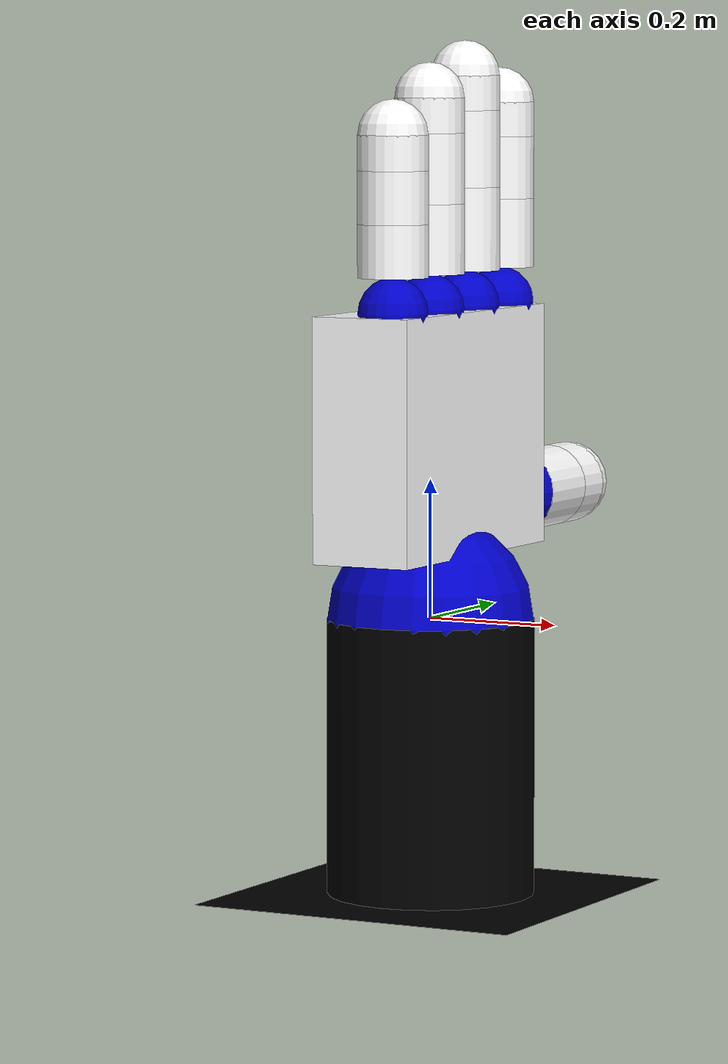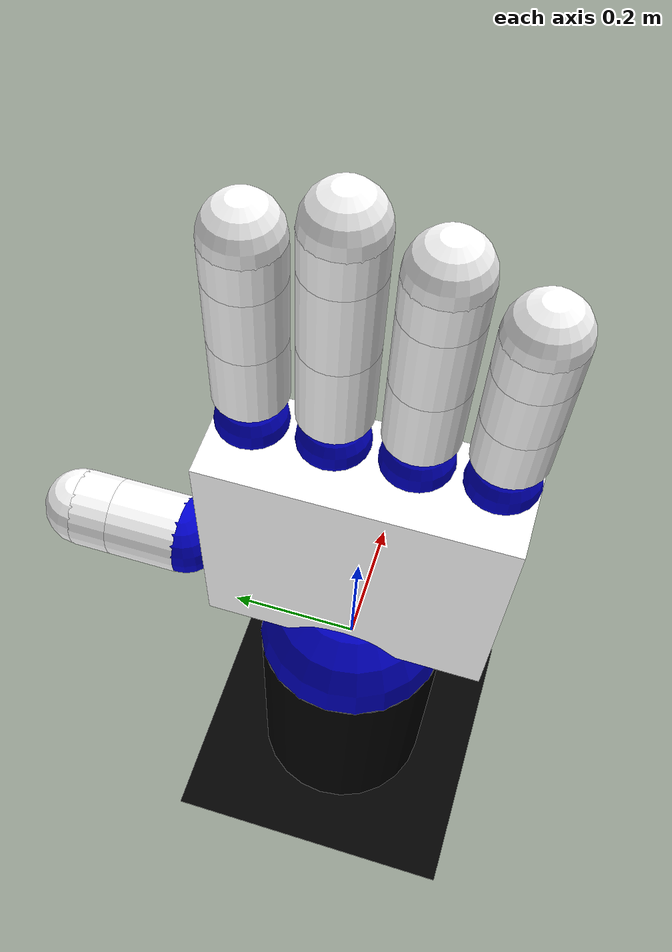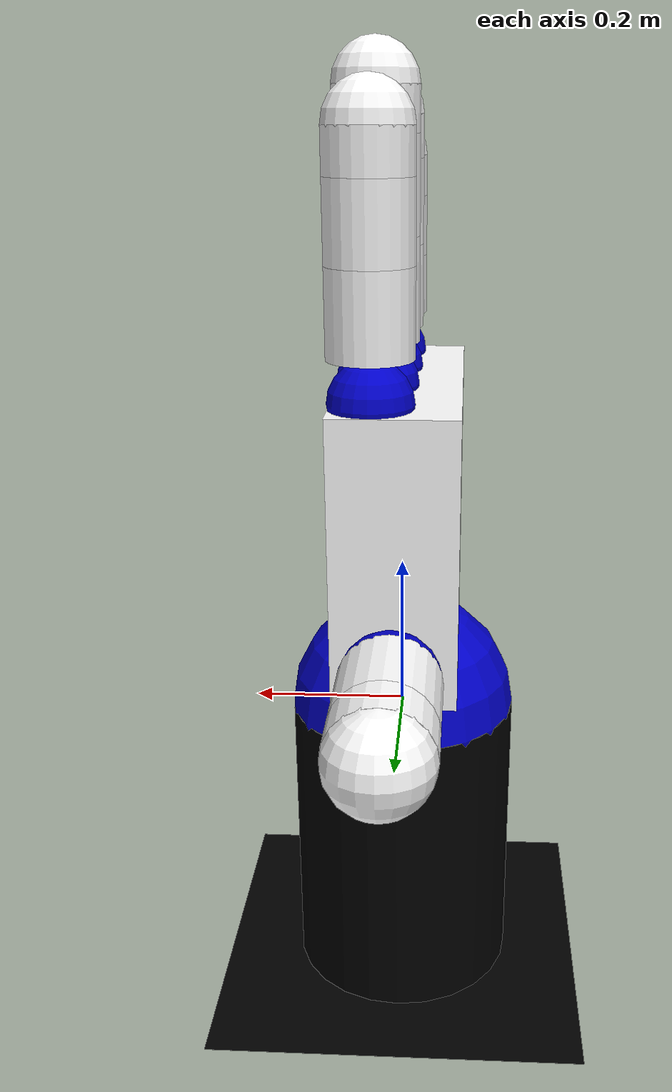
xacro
<?xml version="1.0"?>

<robot name="signbot_hand" xmlns:xacro="http://www.ros.org/wiki/xacro">

<!-- ////	COLORS	///// -->
    <material name="Black">
        <color rgba="0.0 0.0 0.0 1.0"/>
    </material>

    <material name="Red">
        <color rgba="0.8 0.0 0.0 1.0"/>
    </material>

    <material name="White">
        <color rgba="1.0 1.0 1.0 1.0"/>
    </material>

    <material name="Cyan">
	<color rgba="0 1 1 1"/>
    </material>

    <material name="Yellow">
	<color rgba="1 1 0 1"/>
    </material>

    <material name="Green">
	<color rgba="0 1 0 1"/>
    </material>

    <material name="Blue">
	<color rgba="0 0 .8 1"/>
    </material>

    <material name="Silver">
	<color rgba="0.75 0.75 0.75 1"/>
     </material>

<!-- ////	Constants	///// -->

<!-- Constants -->
  <property name="PI" value="3.14159" />
  <property name="TOLERANCE" value="0.001" />
<!-- wrist link properties -->
  <property name="WRIST_RADIUS" value="0.15" />
<!-- palm link properties -->
  <property name="PALM_DEPTH" value="${WRIST_RADIUS}" />
  <property name="PALM_LENGTH" value="0.43"/>
  <property name="PALM_HEIGHT" value="0.35"/>
<!-- thumb finger properties -->
  <property name="THUMB_RADIUS" value="0.06" />
  <property name="THUMB_BOTTOM_LENGTH" value="0.11" />
  <property name="THUMB_TOP_LENGTH" value="${THUMB_RADIUS}" />
<!-- generic fingers properties -->
  <property name="GENERIC_FINGERS_RADIUS" value="0.05" />
  <property name="GENERIC_FINGERS_X" value="0.027" />
  <property name="INTERVAL_BETWEEN_FINGERS" value="0.01" />
<!-- index finger properties -->
  <property name="INDEX_BOTTOM_LENGTH" value="0.1" />
  <property name="INDEX_MIDDLE_LENGTH" value="0.09" />
  <property name="INDEX_TOP_LENGTH" value="${GENERIC_FINGERS_RADIUS}" />
<!--  middle finger properties  -->
  <property name="MIDDLE_BOTTOM_LENGTH" value="0.12" />
  <property name="MIDDLE_MIDDLE_LENGTH" value="0.11" />
  <property name="MIDDLE_TOP_LENGTH" value="${GENERIC_FINGERS_RADIUS}" />
<!--  third finger properties  -->
  <property name="THIRD_BOTTOM_LENGTH" value="0.1" />
  <property name="THIRD_MIDDLE_LENGTH" value="0.1" />
  <property name="THIRD_TOP_LENGTH" value="${GENERIC_FINGERS_RADIUS}" />
<!--  little finger properties  -->
  <property name="LITTLE_BOTTOM_LENGTH" value="0.075" />
  <property name="LITTLE_MIDDLE_LENGTH" value="0.075" />
  <property name="LITTLE_TOP_LENGTH" value="${GENERIC_FINGERS_RADIUS}" />

<!-- ///////////////////////////////////////////////// BLOCKS OF CODE //////////////////////////////////////////////-->

   <xacro:macro name="inertial_matrix" params="mass">
      <inertial>
      	<mass value="${mass}" />
        <inertia ixx="1.0" ixy="0.0" ixz="0.0" iyy="0.5" iyz="0.0" izz="1.0" />
      </inertial>
   </xacro:macro>

   <xacro:macro name="transmission_block" params="joint_name">
	  <transmission name="tran1">
	    <type>transmission_interface/SimpleTransmission</type>
	    <joint name="${joint_name}">
	      <hardwareInterface>PositionJointInterface</hardwareInterface>
	    </joint>
	    <actuator name="motor1">
	      <hardwareInterface>PositionJointInterface</hardwareInterface>
	      <mechanicalReduction>1</mechanicalReduction>
	    </actuator>
	  </transmission>
   </xacro:macro>

<!--	////////	LINK SHAPES	////////	-->
<xacro:macro name="link_shape" params="name color *origin *shape">
    <link name="${name}">
        <visual>
	   <xacro:insert_block name="origin" />
            <geometry>
                <xacro:insert_block name="shape" />
            </geometry>
            <material name="${color}" />
        </visual>
        <collision>
	   <xacro:insert_block name="origin" />
            <geometry>
                <xacro:insert_block name="shape" />
            </geometry>
        </collision>
	<xacro:inertial_matrix mass="1"/>
    </link>
</xacro:macro>

<!--	///////		THUMB FINGER	///////	-->
<xacro:macro name="thumb_finger" params="side">
    <xacro:link_shape name="${side}_knuckle_bottom_thumb_l" color="Blue">
	<origin rpy="0 0 0" xyz="0 0 0"/>
	<sphere radius="${THUMB_RADIUS}" />
    </xacro:link_shape>

    <gazebo reference="${side}_knuckle_bottom_thumb_l">
      <material>Gazebo/Blue</material>
    </gazebo>

    <joint name="${side}_knuckle_bottom_thumb_j" type="revolute">
        <parent link="${side}_palm_l"/>
        <child link="${side}_knuckle_bottom_thumb_l"/>
        <origin xyz="0 ${(PALM_LENGTH/2)+THUMB_RADIUS+TOLERANCE} ${THUMB_RADIUS}"/>
	<axis xyz="1 0 0"/>
	<limit effort="1000.0" lower="0" upper="${PI/2}" velocity="0.5"/>
	<dynamics damping="50" friction="1"/>
    </joint>

    <xacro:link_shape name="${side}_bottom_thumb_l" color="White">
	<origin rpy="${PI/2} 0 0" xyz="0 ${THUMB_BOTTOM_LENGTH/2} 0"/>
	<cylinder radius="${THUMB_RADIUS}" length="${THUMB_BOTTOM_LENGTH}"/>
    </xacro:link_shape>

    <gazebo reference="${side}_bottom_thumb_l">
      <material>Gazebo/White</material>
    </gazebo>

    <joint name="${side}_knuckle_upper_thumb_j" type="revolute">
        <parent link="${side}_knuckle_bottom_thumb_l"/>
        <child link="${side}_bottom_thumb_l"/>
    	<origin xyz="0 0 0"/>
    	<axis xyz="0 0 1"/>
    	<limit effort="1000.0" lower="-${PI/2}" upper="0" velocity="0.5"/>
    	<dynamics damping="50" friction="1"/>
    </joint>

    <xacro:link_shape name="${side}_middle_thumb_l" color="White">
	<origin rpy="${PI/2} 0 0" xyz="0 ${THUMB_TOP_LENGTH/2} -${THUMB_RADIUS}"/>
	<cylinder radius="${THUMB_RADIUS}" length="${THUMB_TOP_LENGTH}"/>
    </xacro:link_shape>

    <gazebo reference="${side}_middle_thumb_l">
      <material>Gazebo/White</material>
    </gazebo>

    <joint name="${side}_middle_thumb_j" type="revolute">
        <parent link="${side}_bottom_thumb_l"/>
        <child link="${side}_middle_thumb_l"/>
    	<origin xyz="0 ${THUMB_BOTTOM_LENGTH} ${THUMB_RADIUS}"/>
    	<axis xyz="1 0 0"/>
    	<limit effort="1000.0" lower="0" upper="${PI/2}" velocity="0.5"/>
    	<dynamics damping="50" friction="1"/>
    </joint>

    <xacro:link_shape name="${side}_top_thumb_l" color="White">
	<origin rpy="0 0 0" xyz="0 0 0"/>
	<sphere radius="${THUMB_RADIUS}"/>
    </xacro:link_shape>

    <gazebo reference="${side}_top_thumb_l">
      <material>Gazebo/White</material>
    </gazebo>

    <joint name="${side}_top_thumb_j" type="fixed">
        <parent link="${side}_middle_thumb_l"/>
        <child link="${side}_top_thumb_l"/>
    	<origin xyz="0 0.06 -0.06"/>
    </joint>

<!--///	TRANSMICION ROS CONTROL	/// -->
   <xacro:transmission_block joint_name="${side}_knuckle_bottom_thumb_j"/>
   <xacro:transmission_block joint_name="${side}_knuckle_upper_thumb_j"/>
   <xacro:transmission_block joint_name="${side}_middle_thumb_j"/>

</xacro:macro>

<xacro:macro name="generic_finger"
	params="name side ref_point bottom_length middle_length top_length">
    <xacro:link_shape name="${side}_knuckle_bottom_${name}_l" color="Blue">
	<origin rpy="0 0 0" xyz="0 0 0"/>
	<sphere radius="${GENERIC_FINGERS_RADIUS}" />
    </xacro:link_shape>

    <gazebo reference="${side}_knuckle_bottom_${name}_l">
      <material>Gazebo/Blue</material>
    </gazebo>

    <joint name="${side}_knuckle_bottom_${name}_j" type="revolute">
        <parent link="${side}_palm_l"/>
        <child link="${side}_knuckle_bottom_${name}_l"/>
        <origin xyz="${GENERIC_FINGERS_X} ${ref_point} ${PALM_HEIGHT}"/>
    	<axis xyz="0 1 0"/>
    	<limit effort="1000.0" lower="0" upper="${PI/2}" velocity="0.5"/>
    	<dynamics damping="50" friction="1"/>
    </joint>

    <xacro:link_shape name="${side}_bottom_${name}_l" color="White">
	<origin rpy="0 0 0" xyz="0 0 ${bottom_length/2}"/>
	<cylinder radius="${GENERIC_FINGERS_RADIUS}" length="${bottom_length}"/>
    </xacro:link_shape>

    <gazebo reference="${side}_bottom_${name}_l">
      <material>Gazebo/White</material>
    </gazebo>

    <joint name="${side}_knuckle_upper_${name}_j" type="fixed">
        <parent link="${side}_knuckle_bottom_${name}_l"/>
        <child link="${side}_bottom_${name}_l"/>
    	<origin xyz="0 0 ${GENERIC_FINGERS_RADIUS}"/>
    </joint>

    <xacro:link_shape name="${side}_middle_${name}_l" color="White">
	<origin rpy="0 0 0" xyz="-${GENERIC_FINGERS_RADIUS} 0 ${middle_length/2}"/>
	<cylinder radius="${GENERIC_FINGERS_RADIUS}" length="${middle_length}"/>
    </xacro:link_shape>

    <gazebo reference="${side}_middle_${name}_l">
      <material>Gazebo/White</material>
    </gazebo>

    <joint name="${side}_middle_${name}_j" type="revolute">
        <parent link="${side}_bottom_${name}_l"/>
        <child link="${side}_middle_${name}_l"/>
    	<origin xyz="${GENERIC_FINGERS_RADIUS} 0 ${bottom_length}"/>
    	<axis xyz="0 1 0"/>
    <limit effort="1000.0" lower="0" upper="${PI/2}" velocity="0.5"/>
    <dynamics damping="50" friction="1"/>
    </joint>

    <xacro:link_shape name="${side}_top_${name}_l" color="White">
	<origin rpy="0 0 0" xyz="-${GENERIC_FINGERS_RADIUS} 0 ${top_length/2}"/>
	<cylinder radius="${GENERIC_FINGERS_RADIUS}" length="${top_length}"/>
    </xacro:link_shape>

    <gazebo reference="${side}_top_${name}_l">
      <material>Gazebo/White</material>
    </gazebo>

    <joint name="${side}_top_${name}_j" type="revolute">
        <parent link="${side}_middle_${name}_l"/>
        <child link="${side}_top_${name}_l"/>
    	<origin xyz="0 0 ${middle_length}"/>
    	<axis xyz="0 1 0"/>
   	<limit effort="1000.0" lower="0" upper="${PI/2}" velocity="0.5"/>
    	<dynamics damping="50" friction="1"/>
    </joint>

    <xacro:link_shape name="${side}_toptop_${name}_l" color="White">
	<origin rpy="0 0 0" xyz="0 0 0"/>
	<sphere radius="${GENERIC_FINGERS_RADIUS}"/>
    </xacro:link_shape>

    <gazebo reference="${side}_toptop_${name}_l">
      <material>Gazebo/White</material>
    </gazebo>

    <joint name="${side}_toptop_${name}_j" type="fixed">
        <parent link="${side}_top_${name}_l"/>
        <child link="${side}_toptop_${name}_l"/>
    	<origin xyz="-${GENERIC_FINGERS_RADIUS} 0 ${GENERIC_FINGERS_RADIUS}"/>
    </joint>

<!--///	TRANSMICION ROS CONTROL	/// -->
   <xacro:transmission_block joint_name="${side}_knuckle_bottom_${name}_j"/>
   <xacro:transmission_block joint_name="${side}_middle_${name}_j"/>
   <xacro:transmission_block joint_name="${side}_top_${name}_j"/>

</xacro:macro>

<!-- /////////////////////////////////  MODEL   ////////////////////////////////////////////////////////////// -->

  <link name="base_link">

    <visual>
      <origin rpy="0 0 0" xyz="0 0 -0.4"/>
      <geometry>
	       <box size="0.5 0.5 0.0001"/>
      </geometry>
      <material name="Black" />
    </visual>

    <collision>
      <origin rpy="0 0 0" xyz="0 0 -0.4"/>
      <geometry>
	        <box size="0.5 0.5 0.0001"/>
      </geometry>
      </collision>
	<xacro:inertial_matrix mass="1000"/>

  </link>

  <gazebo reference="base_link">
    <material>Gazebo/Black</material>
  </gazebo>

  <link name="base_link2">

    <visual>
      <origin rpy="0 0 0" xyz="0 0 -0.2"/>
      <geometry>
	       <cylinder radius="${WRIST_RADIUS}" length="0.4"/>
      </geometry>
      <material name="Black" />
    </visual>

    <collision>
      <origin rpy="0 0 0" xyz="0 0 -0.2"/>
      <geometry>
	       <cylinder radius="${WRIST_RADIUS}" length="0.4"/>
      </geometry>
      </collision>
	<xacro:inertial_matrix mass="1000"/>

  </link>

  <gazebo reference="base_link2">
    <material>Gazebo/Black</material>
  </gazebo>

 <joint name="r_base_link_j" type="fixed">
    <parent link="base_link"/>
    <child link="base_link2"/>
    <origin xyz="0 0 0"/>
  </joint>

<!-- WIRST LINK -->
  <xacro:link_shape name="r_wirst_l" color="Blue">
	<origin xyz="0 0 0" rpy="0 0 0" />
	<sphere radius="${WRIST_RADIUS}"/>
  </xacro:link_shape>

  <gazebo reference="r_wirst_l">
    <material>Gazebo/Blue</material>
  </gazebo>

  <joint name="r_wirst_j" type="revolute">
    <parent link="base_link2"/>
    <child link="r_wirst_l"/>
    <origin xyz="0 0 0"/>
    <axis xyz="1 0 0"/>
    <limit effort="1000.0" lower="-${PI/4}" upper="${PI/4}" velocity="0.5"/>
    <dynamics damping="50" friction="1"/>
  </joint>

<!-- PALM LINK -->
  <xacro:link_shape name="r_palm_l" color="White">
	<origin rpy="0 0 0" xyz="0 0 0.17"/>
	<box size="${PALM_DEPTH} ${PALM_LENGTH} ${PALM_HEIGHT}"/>
  </xacro:link_shape>

  <gazebo reference="r_palm_l">
    <material>Gazebo/White</material>
  </gazebo>

  <joint name="r_upper_wirst_j" type="revolute">
    <parent link="r_wirst_l"/>
    <child link="r_palm_l"/>
    <origin xyz="0 0 0.10"/>
    <axis xyz="0 1 0"/>
    <limit effort="1000.0" lower="-${PI/4}" upper="${PI/4}" velocity="0.5"/>
    <dynamics damping="50" friction="1"/>
  </joint>

<!--   THUMB FINGER -->
  <xacro:thumb_finger side="r" />

<!--	FOUR FINGERS	(INDEX, MIDDLE, THIRD, LITTLE)-->
  <xacro:generic_finger name= "index"
			side="r"
			ref_point="${(PALM_LENGTH/2)-GENERIC_FINGERS_RADIUS}"
			bottom_length="${INDEX_BOTTOM_LENGTH}"
			middle_length="${INDEX_MIDDLE_LENGTH}"
			top_length="${INDEX_TOP_LENGTH}" />

  <xacro:generic_finger name= "middle"
			side="r"
			ref_point="${(PALM_LENGTH/2)-GENERIC_FINGERS_RADIUS*3-INTERVAL_BETWEEN_FINGERS}"
			bottom_length="${MIDDLE_BOTTOM_LENGTH}"
			middle_length="${MIDDLE_MIDDLE_LENGTH}"
			top_length="${MIDDLE_TOP_LENGTH}" />

  <xacro:generic_finger name= "third"
			side="r"
			ref_point="${(PALM_LENGTH/2)-GENERIC_FINGERS_RADIUS*5-INTERVAL_BETWEEN_FINGERS*2}"
			bottom_length="${THIRD_BOTTOM_LENGTH}"
			middle_length="${THIRD_MIDDLE_LENGTH}"
			top_length="${THIRD_TOP_LENGTH}" />

  <xacro:generic_finger name= "little"
			side="r"
			ref_point="${(PALM_LENGTH/2)-GENERIC_FINGERS_RADIUS*7-INTERVAL_BETWEEN_FINGERS*3}"
			bottom_length="${LITTLE_BOTTOM_LENGTH}"
			middle_length="${LITTLE_MIDDLE_LENGTH}"
			top_length="${LITTLE_TOP_LENGTH}" />

<!-- //////////////////////////////	END MODEL	///////////////////////////////////////////////// -->

<!-- Transmissions for ROS Control -->
  <xacro:transmission_block joint_name="r_wirst_j"/>
  <xacro:transmission_block joint_name="r_upper_wirst_j"/>

<!-- ros_control plugin -->
  <gazebo>
    <plugin name="gazebo_ros_control" filename="libgazebo_ros_control.so">
      <robotNamespace>/hand</robotNamespace>
    </plugin>
  </gazebo>

</robot>
